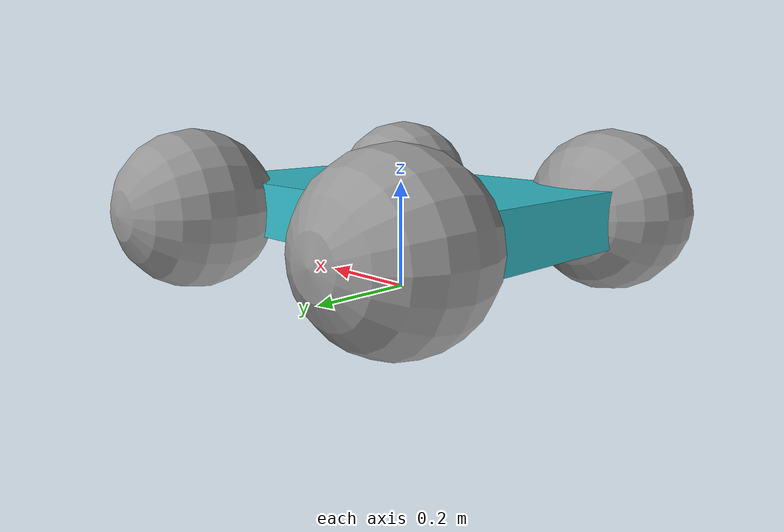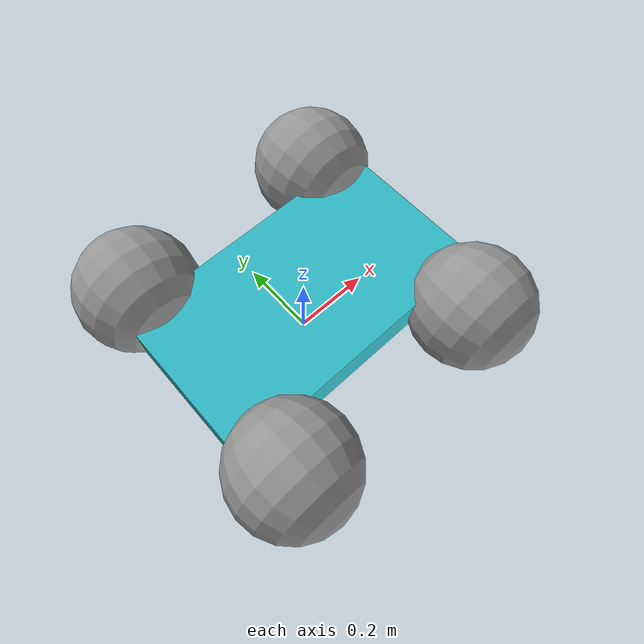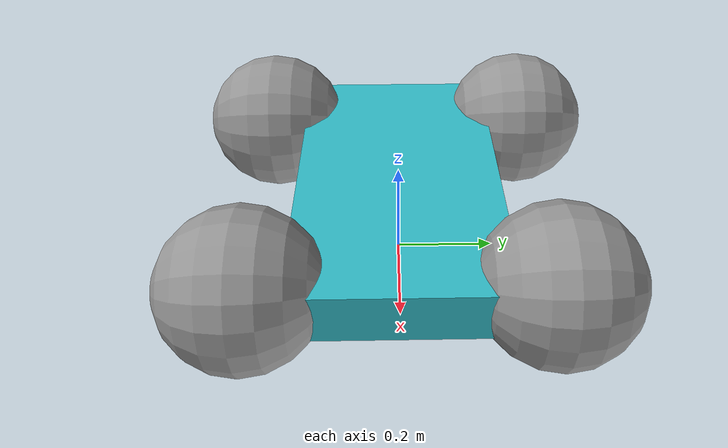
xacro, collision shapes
<?xml version="1.0"?>

<robot xmlns:xacro="http://www.ros.org/wiki/xacro"
       xmlns:gz="http://gazebosim.org/schema">

    <!-- VARIABLES -->
    <xacro:property name="chassis_length" value="0.7"  />
    <xacro:property name="chassis_width"  value="0.4"  />
    <xacro:property name="chassis_height" value="0.1"  />
    <xacro:property name="wheel_radius"   value="0.15" />
    <xacro:property name="wheel_width"    value="0.12" />
    <xacro:property name="wheel_base"     value="0.55"  />   <!-- front-to-rear wheel center distance -->
    <xacro:property name="track_width"    value="0.55"  />   <!-- left-to-right wheel center distance -->

    <!-- FUNCTIONS/MACROS -->
    <xacro:macro name="wheel" params="name_prefix mesh_url">
        <link name="${name_prefix}_wheel">

            <xacro:cylinder_inertia m="1.0" r="${wheel_radius}" h="${wheel_width}"
                                    o_xyz="0.0 0.0 0.0" o_rpy="${pi/2.0} 0.0 0.0" />

            <visual>
                <origin xyz="0.0 0.0 0.0" rpy="0.0 0.0 0.0" />
                <geometry>
                    <mesh filename="${mesh_url}"
                          scale="0.003 0.003 0.003" />
                </geometry>
                <material name="gray" />
            </visual>

            <collision>
                <origin xyz="0.0 0.0 0.0" rpy="${pi/2.0} 0.0 0.0" />
                <geometry>
                  <sphere radius="${wheel_radius}" />
                </geometry>
            </collision>

        </link>
    </xacro:macro>

    <!-- LINKS -->
    <link name="base_link">
    </link>

    <link name="chassis">

        <xacro:box_inertia m="3.0" x="${chassis_length}" y="${chassis_width}" z="${chassis_height}"
                           o_xyz="0.0 0.0 0.0" o_rpy="0.0 0.0 0.0" />

        <visual>
            <origin xyz="0.0 0.0 0.0" rpy="0.0 0.0 0.0" />
            <geometry>

                <box size="${chassis_length} ${chassis_width} ${chassis_height}" />
            </geometry>
            <material name="cyan" />
        </visual>

        <collision>
            <origin xyz="0.0 0.0 0.0" rpy="0.0 0.0 0.0" />
            <geometry>
                <box size="${chassis_length} ${chassis_width} ${chassis_height}" />
            </geometry>
        </collision>

    </link>

    <xacro:wheel name_prefix="front_left" mesh_url="package://mgc_description/meshes/MecanumWheel_FL.stl" />
    <xacro:wheel name_prefix="front_right" mesh_url="package://mgc_description/meshes/MecanumWheel_FR.stl"/>
    <xacro:wheel name_prefix="rear_left" mesh_url="package://mgc_description/meshes/MecanumWheel_RL.stl"/>
    <xacro:wheel name_prefix="rear_right" mesh_url="package://mgc_description/meshes/MecanumWheel_RR.stl"/>

    <!-- JOINTS -->
    <joint name="base_link_TO_chassis" type="fixed">
        <parent link="base_link" />
        <child link="chassis" />
        <origin xyz="0.0 0.0 ${wheel_radius}" rpy= "0.0 0.0 0.0" />
    </joint>

    <joint name="chassis_TO_front_left_wheel" type="continuous">
        <parent link="chassis" />
        <child link="front_left_wheel" />
        <origin xyz="${(wheel_base/2.0)} ${(track_width/2.0)} 0.0" rpy="0.0 0.0 0.0" />
        <axis xyz = "0 1 0" />
    </joint>

    <joint name="chassis_TO_front_right_wheel" type="continuous">
        <parent link="chassis" />
        <child link="front_right_wheel" />
        <origin xyz="${(wheel_base/2.0)} -${(track_width/2.0)} 0.0" rpy="0.0 0.0 0.0" />
        <axis xyz = "0 1 0" />
    </joint>

    <joint name="chassis_TO_rear_left_wheel" type="continuous">
        <parent link="chassis" />
        <child link="rear_left_wheel" />
        <origin xyz="-${(wheel_base/2.0)} ${(track_width/2.0)} 0.0" rpy="0.0 0.0 0.0" />
        <axis xyz = "0 1 0" />
    </joint>

    <joint name="chassis_TO_rear_right_wheel" type="continuous">
        <parent link="chassis" />
        <child link="rear_right_wheel" />
        <origin xyz="-${(wheel_base/2.0)} -${(track_width/2.0)} 0.0" rpy="0.0 0.0 0.0" />
        <axis xyz = "0 1 0" />
    </joint>

</robot>
